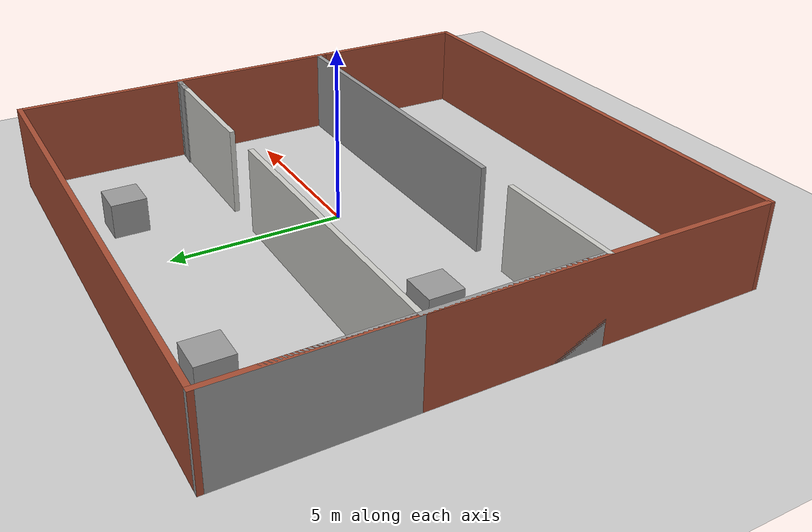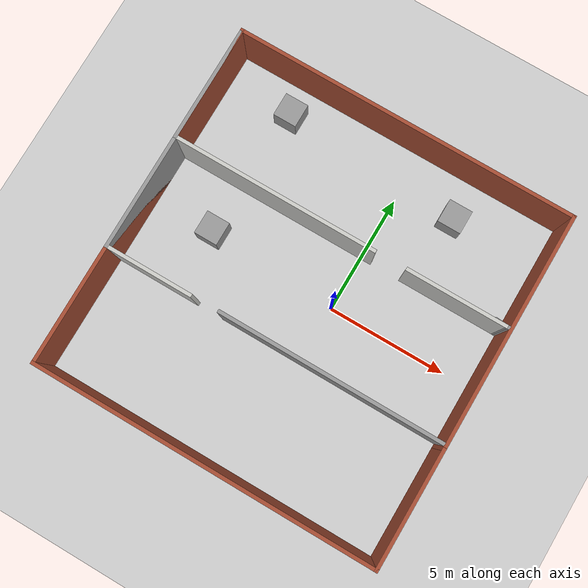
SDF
<sdf version="1.7">
 <world name="default">
  <light name="sun" type="directional">
   <pose>0 0 10 0 -0 0</pose>
   <diffuse>0.8 0.8 0.8 1</diffuse>
   <specular>0.2 0.2 0.2 1</specular>
   <attenuation>
    <range>1000</range>
    <constant>0.9</constant>
    <linear>0.01</linear>
    <quadratic>0.001</quadratic>
   </attenuation>
   <direction>-0.5 0.1 -0.9</direction>
   <spot><inner_angle>0</inner_angle><outer_angle>0</outer_angle><falloff>0</falloff></spot>
  </light>
  <model name="ground_plane">
   <static>1</static>
   <link name="link">
    <collision name="collision">
     <geometry><plane><normal>0 0 1</normal><size>100 100</size></plane></geometry>
     <surface>
      <contact><collide_bitmask>65535</collide_bitmask></contact>
      <friction><ode><mu>100</mu><mu2>50</mu2></ode></friction>
     </surface>
    </collision>
    <visual name="visual">
     <cast_shadows>0</cast_shadows>
     <geometry><plane><normal>0 0 1</normal><size>100 100</size></plane></geometry>
     <material>
      <script><uri>file://media/materials/scripts/gazebo.material</uri><name>Gazebo/Grey</name></script>
     </material>
    </visual>
   </link>
  </model>
  <gravity>0 0 -9.8</gravity>
  <magnetic_field>6e-06 2.3e-05 -4.2e-05</magnetic_field>
  <atmosphere type="adiabatic"/>
  <physics type="ode">
   <max_step_size>0.001</max_step_size>
   <real_time_factor>1</real_time_factor>
   <real_time_update_rate>1000</real_time_update_rate>
  </physics>
  <scene><ambient>0.4 0.4 0.4 1</ambient><background>0.7 0.7 0.7 1</background><shadows>1</shadows></scene>
  <spherical_coordinates>
   <surface_model>EARTH_WGS84</surface_model>
   <latitude_deg>0</latitude_deg>
   <longitude_deg>0</longitude_deg>
   <elevation>0</elevation>
   <heading_deg>0</heading_deg>
  </spherical_coordinates>
  <model name="Untitled">
   <pose>-1.05244 -0.117342 0 0 -0 0</pose>
   <link name="Wall_10">
    <collision name="Wall_10_Collision">
     <geometry><box><size>14.75 0.15 2.5</size></box></geometry>
     <pose>0 0 1.25 0 -0 0</pose>
    </collision>
    <visual name="Wall_10_Visual">
     <pose>0 0 1.25 0 -0 0</pose>
     <geometry><box><size>14.75 0.15 2.5</size></box></geometry>
     <material>
      <script><uri>file://media/materials/scripts/gazebo.material</uri><name>Gazebo/Bricks</name></script>
      <ambient>1 1 1 1</ambient>
     </material>
     <meta><layer>0</layer></meta>
    </visual>
    <pose>-7.175 0.049999 0 0 -0 -1.5708</pose>
   </link>
   <link name="Wall_14">
    <collision name="Wall_14_Collision">
     <geometry><box><size>14.5003 0.15 2.5</size></box></geometry>
     <pose>0 0 1.25 0 -0 0</pose>
    </collision>
    <visual name="Wall_14_Visual">
     <pose>0 0 1.25 0 -0 0</pose>
     <geometry><box><size>14.5003 0.15 2.5</size></box></geometry>
     <material>
      <script><uri>file://media/materials/scripts/gazebo.material</uri><name>Gazebo/Bricks</name></script>
      <ambient>1 1 1 1</ambient>
     </material>
     <meta><layer>0</layer></meta>
    </visual>
    <pose>0 -7.35 0 0 -0 3.14159</pose>
   </link>
   <link name="Wall_16">
    <collision name="Wall_16_Collision">
     <geometry><box><size>5 0.15 2.5</size></box></geometry>
     <pose>0 0 1.25 0 -0 0</pose>
    </collision>
    <visual name="Wall_16_Visual">
     <pose>0 0 1.25 0 -0 0</pose>
     <geometry><box><size>5 0.15 2.5</size></box></geometry>
     <material>
      <script><uri>file://media/materials/scripts/gazebo.material</uri><name>Gazebo/Grey</name></script>
      <ambient>1 1 1 1</ambient>
     </material>
     <meta><layer>0</layer></meta>
    </visual>
    <pose>-7.175 4.925 0 0 -0 -1.5708</pose>
   </link>
   <link name="Wall_17">
    <collision name="Wall_17_Collision">
     <geometry><box><size>8.75 0.15 2.5</size></box></geometry>
     <pose>0 0 1.25 0 -0 0</pose>
    </collision>
    <visual name="Wall_17_Visual">
     <pose>0 0 1.25 0 -0 0</pose>
     <geometry><box><size>8.75 0.15 2.5</size></box></geometry>
     <material>
      <script><uri>file://media/materials/scripts/gazebo.material</uri><name>Gazebo/CeilingTiled</name></script>
      <ambient>1 1 1 1</ambient>
     </material>
     <meta><layer>0</layer></meta>
    </visual>
    <pose>-2.875 2.5 0 0 -0 0</pose>
   </link>
   <link name="Wall_19">
    <collision name="Wall_19_Collision">
     <geometry><box><size>4.25 0.15 2.5</size></box></geometry>
     <pose>0 0 1.25 0 -0 0</pose>
    </collision>
    <visual name="Wall_19_Visual">
     <pose>0 0 1.25 0 -0 0</pose>
     <geometry><box><size>4.25 0.15 2.5</size></box></geometry>
     <material>
      <script><uri>file://media/materials/scripts/gazebo.material</uri><name>Gazebo/CeilingTiled</name></script>
      <ambient>1 1 1 1</ambient>
     </material>
     <meta><layer>0</layer></meta>
    </visual>
    <pose>4.89517 2.5146 0 0 -0 0</pose>
   </link>
   <link name="Wall_21">
    <collision name="Wall_21_Collision">
     <geometry><box><size>0.55345 0.15 2.5</size></box></geometry>
     <pose>0 0 1.25 0 -0 0</pose>
    </collision>
    <visual name="Wall_21_Visual">
     <pose>0 0 1.25 0 -0 0</pose>
     <geometry><box><size>0.55345 0.15 2.5</size></box></geometry>
     <material>
      <script><uri>file://media/materials/scripts/gazebo.material</uri><name>Gazebo/Grey</name></script>
      <ambient>1 1 1 1</ambient>
     </material>
     <meta><layer>0</layer></meta>
    </visual>
    <pose>6.74389 2.52791 0 0 -0 -0.06598</pose>
   </link>
   <link name="Wall_23">
    <collision name="Wall_23_Collision">
     <geometry><box><size>0.25 0.15 2.5</size></box></geometry>
     <pose>0 0 1.25 0 -0 0</pose>
    </collision>
    <visual name="Wall_23_Visual">
     <pose>0 0 1.25 0 -0 0</pose>
     <geometry><box><size>0.25 0.15 2.5</size></box></geometry>
     <material>
      <script><uri>file://media/materials/scripts/gazebo.material</uri><name>Gazebo/Grey</name></script>
      <ambient>1 1 1 1</ambient>
     </material>
     <meta><layer>0</layer></meta>
    </visual>
    <pose>6.99517 2.5146 0 0 -0 0</pose>
   </link>
   <link name="Wall_27">
    <collision name="Wall_27_Collision">
     <geometry><box><size>5 0.15 2.5</size></box></geometry>
     <pose>0 0 1.25 0 -0 0</pose>
    </collision>
    <visual name="Wall_27_Visual">
     <pose>0 0 1.25 0 -0 0</pose>
     <geometry><box><size>5 0.15 2.5</size></box></geometry>
     <material>
      <script><uri>file://media/materials/scripts/gazebo.material</uri><name>Gazebo/Grey</name></script>
      <ambient>1 1 1 1</ambient>
     </material>
     <meta><layer>0</layer></meta>
    </visual>
    <pose>-7.175 0.075 0 0 -0 -1.5708</pose>
   </link>
   <link name="Wall_28">
    <collision name="Wall_28_Collision">
     <geometry><box><size>3.75 0.15 2.5</size></box></geometry>
     <pose>0 0 1.25 0 -0 0</pose>
    </collision>
    <visual name="Wall_28_Visual">
     <pose>0 0 1.25 0 -0 0</pose>
     <geometry><box><size>3.75 0.15 2.5</size></box></geometry>
     <material>
      <script><uri>file://media/materials/scripts/gazebo.material</uri><name>Gazebo/CeilingTiled</name></script>
      <ambient>1 1 1 1</ambient>
     </material>
     <meta><layer>0</layer></meta>
    </visual>
    <pose>-5.375 -2.35 0 0 -0 0</pose>
   </link>
   <link name="Wall_30">
    <collision name="Wall_30_Collision">
     <geometry><box><size>9.5 0.15 2.5</size></box></geometry>
     <pose>0 0 1.25 0 -0 0</pose>
    </collision>
    <visual name="Wall_30_Visual">
     <pose>0 0 1.25 0 -0 0</pose>
     <geometry><box><size>9.5 0.15 2.5</size></box></geometry>
     <material>
      <script><uri>file://media/materials/scripts/gazebo.material</uri><name>Gazebo/Grey</name></script>
      <ambient>1 1 1 1</ambient>
     </material>
     <meta><layer>0</layer></meta>
    </visual>
    <pose>2.35974 -2.32663 0 0 -0 0</pose>
   </link>
   <link name="Wall_4">
    <collision name="Wall_4_Collision">
     <geometry><box><size>14.5 0.15 2.5</size></box></geometry>
     <pose>0 0 1.25 0 -0 0</pose>
    </collision>
    <visual name="Wall_4_Visual">
     <pose>0 0 1.25 0 -0 0</pose>
     <geometry><box><size>14.5 0.15 2.5</size></box></geometry>
     <material>
      <script><uri>file://media/materials/scripts/gazebo.material</uri><name>Gazebo/Bricks</name></script>
      <ambient>1 1 1 1</ambient>
     </material>
     <meta><layer>0</layer></meta>
    </visual>
    <pose>0 7.35 0 0 -0 0</pose>
   </link>
   <link name="Wall_5">
    <collision name="Wall_5_Collision">
     <geometry><box><size>10 0.15 2.5</size></box></geometry>
     <pose>0 0 1.25 0 -0 0</pose>
    </collision>
    <visual name="Wall_5_Visual">
     <pose>0 0 1.25 0 -0 0</pose>
     <geometry><box><size>10 0.15 2.5</size></box></geometry>
     <material>
      <script><uri>file://media/materials/scripts/gazebo.material</uri><name>Gazebo/Bricks</name></script>
      <ambient>1 1 1 1</ambient>
     </material>
     <meta><layer>0</layer></meta>
    </visual>
    <pose>7.175 2.425 0 0 -0 -1.5708</pose>
   </link>
   <link name="Wall_7">
    <collision name="Wall_7_Collision">
     <geometry><box><size>5 0.15 2.5</size></box></geometry>
     <pose>0 0 1.25 0 -0 0</pose>
    </collision>
    <visual name="Wall_7_Visual">
     <pose>0 0 1.25 0 -0 0</pose>
     <geometry><box><size>5 0.15 2.5</size></box></geometry>
     <material>
      <script><uri>file://media/materials/scripts/gazebo.material</uri><name>Gazebo/Bricks</name></script>
      <ambient>1 1 1 1</ambient>
     </material>
     <meta><layer>0</layer></meta>
    </visual>
    <pose>7.175 -4.925 0 0 -0 -1.5708</pose>
   </link>
   <static>1</static>
  </model>
  <model name="unit_box_1">
   <link name="link">
    <inertial>
     <mass>10000</mass>
     <inertia><ixx>1666.67</ixx><ixy>0</ixy><ixz>0</ixz><iyy>1666.67</iyy><iyz>0</iyz><izz>1666.67</izz></inertia>
    </inertial>
    <visual name="visual">
     <geometry><box><size>1 1 1</size></box></geometry>
     <material>
      <script><name>Gazebo/Grey</name><uri>file://media/materials/scripts/gazebo.material</uri></script>
      <shader type="pixel"><normal_map>__default__</normal_map></shader>
     </material>
    </visual>
    <collision name="collision">
     <geometry><box><size>1 1 1</size></box></geometry>
     <surface>
      <friction>
       <ode><mu>1</mu><mu2>1</mu2><fdir1>0 0 0</fdir1><slip1>0</slip1><slip2>0</slip2></ode>
       <torsional>
        <coefficient>1</coefficient>
        <patch_radius>0</patch_radius>
        <surface_radius>0</surface_radius>
        <use_patch_radius>1</use_patch_radius>
        <ode><slip>0</slip></ode>
       </torsional>
      </friction>
      <bounce><restitution_coefficient>0</restitution_coefficient><threshold>1e+06</threshold></bounce>
      <contact>
       <collide_without_contact>0</collide_without_contact>
       <collide_without_contact_bitmask>1</collide_without_contact_bitmask>
       <collide_bitmask>1</collide_bitmask>
       <ode>
        <soft_cfm>0</soft_cfm>
        <soft_erp>0.2</soft_erp>
        <kp>1e+13</kp>
        <kd>1</kd>
        <max_vel>0.01</max_vel>
        <min_depth>0</min_depth>
       </ode>
       <bullet>
        <split_impulse>1</split_impulse>
        <split_impulse_penetration_threshold>-0.01</split_impulse_penetration_threshold>
        <soft_cfm>0</soft_cfm>
        <soft_erp>0.2</soft_erp>
        <kp>1e+13</kp>
        <kd>1</kd>
       </bullet>
      </contact>
     </surface>
    </collision>
   </link>
   <static>0</static>
   <pose>-5.53273 0.273376 0.5 0 -0 0</pose>
  </model>
  <model name="unit_box">
   <link name="link">
    <inertial>
     <mass>100000</mass>
     <inertia><ixx>16666.7</ixx><ixy>0</ixy><ixz>0</ixz><iyy>16666.7</iyy><iyz>0</iyz><izz>16666.7</izz></inertia>
    </inertial>
    <visual name="visual">
     <geometry><box><size>1 1 1</size></box></geometry>
     <material>
      <script><name>Gazebo/Grey</name><uri>file://media/materials/scripts/gazebo.material</uri></script>
      <shader type="pixel"><normal_map>__default__</normal_map></shader>
     </material>
    </visual>
    <collision name="collision">
     <geometry><box><size>1 1 1</size></box></geometry>
     <surface>
      <friction>
       <ode><mu>1</mu><mu2>1</mu2><fdir1>0 0 0</fdir1><slip1>0</slip1><slip2>0</slip2></ode>
       <torsional>
        <coefficient>1</coefficient>
        <patch_radius>0</patch_radius>
        <surface_radius>0</surface_radius>
        <use_patch_radius>1</use_patch_radius>
        <ode><slip>0</slip></ode>
       </torsional>
      </friction>
      <bounce><restitution_coefficient>0</restitution_coefficient><threshold>1e+06</threshold></bounce>
      <contact>
       <collide_without_contact>0</collide_without_contact>
       <collide_without_contact_bitmask>1</collide_without_contact_bitmask>
       <collide_bitmask>1</collide_bitmask>
       <ode>
        <soft_cfm>0</soft_cfm>
        <soft_erp>0.2</soft_erp>
        <kp>1e+13</kp>
        <kd>1</kd>
        <max_vel>0.01</max_vel>
        <min_depth>0</min_depth>
       </ode>
       <bullet>
        <split_impulse>1</split_impulse>
        <split_impulse_penetration_threshold>-0.01</split_impulse_penetration_threshold>
        <soft_cfm>0</soft_cfm>
        <soft_erp>0.2</soft_erp>
        <kp>1e+13</kp>
        <kd>1</kd>
       </bullet>
      </contact>
     </surface>
    </collision>
   </link>
   <static>0</static>
   <pose>-5.31529 5.90179 0.5 0 -0 0</pose>
  </model>
  <model name="unit_box_0">
   <link name="link">
    <inertial>
     <mass>100000</mass>
     <inertia><ixx>16666.7</ixx><ixy>0</ixy><ixz>0</ixz><iyy>16666.7</iyy><iyz>0</iyz><izz>16666.7</izz></inertia>
    </inertial>
    <visual name="visual">
     <geometry><box><size>1 1 1</size></box></geometry>
     <material>
      <script><name>Gazebo/Grey</name><uri>file://media/materials/scripts/gazebo.material</uri></script>
      <shader type="pixel"><normal_map>__default__</normal_map></shader>
     </material>
    </visual>
    <collision name="collision">
     <geometry><box><size>1 1 1</size></box></geometry>
     <surface>
      <friction>
       <ode><mu>1</mu><mu2>1</mu2><fdir1>0 0 0</fdir1><slip1>0</slip1><slip2>0</slip2></ode>
       <torsional>
        <coefficient>1</coefficient>
        <patch_radius>0</patch_radius>
        <surface_radius>0</surface_radius>
        <use_patch_radius>1</use_patch_radius>
        <ode><slip>0</slip></ode>
       </torsional>
      </friction>
      <bounce><restitution_coefficient>0</restitution_coefficient><threshold>1e+06</threshold></bounce>
      <contact>
       <collide_without_contact>0</collide_without_contact>
       <collide_without_contact_bitmask>1</collide_without_contact_bitmask>
       <collide_bitmask>1</collide_bitmask>
       <ode>
        <soft_cfm>0</soft_cfm>
        <soft_erp>0.2</soft_erp>
        <kp>1e+13</kp>
        <kd>1</kd>
        <max_vel>0.01</max_vel>
        <min_depth>0</min_depth>
       </ode>
       <bullet>
        <split_impulse>1</split_impulse>
        <split_impulse_penetration_threshold>-0.01</split_impulse_penetration_threshold>
        <soft_cfm>0</soft_cfm>
        <soft_erp>0.2</soft_erp>
        <kp>1e+13</kp>
        <kd>1</kd>
       </bullet>
      </contact>
     </surface>
    </collision>
   </link>
   <static>0</static>
   <pose>2.36103 5.43923 0.5 0 -0 0</pose>
  </model>
 </world>
</sdf>
